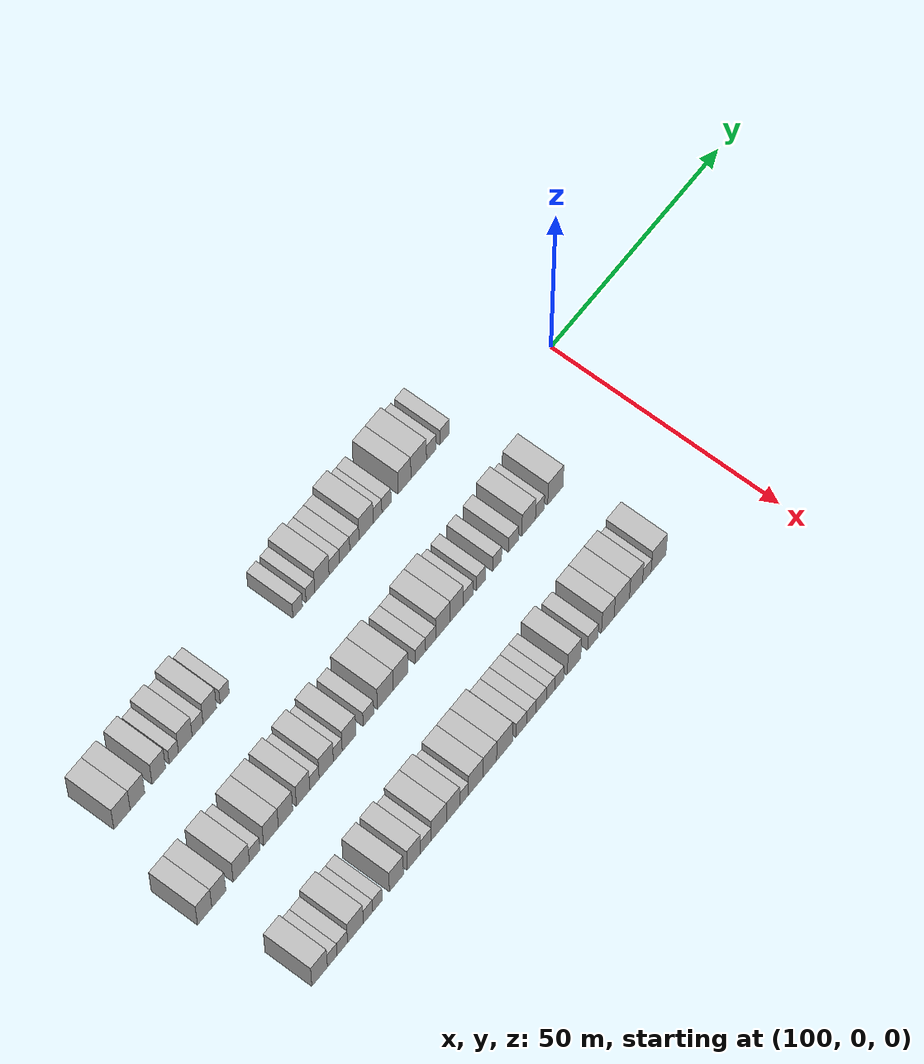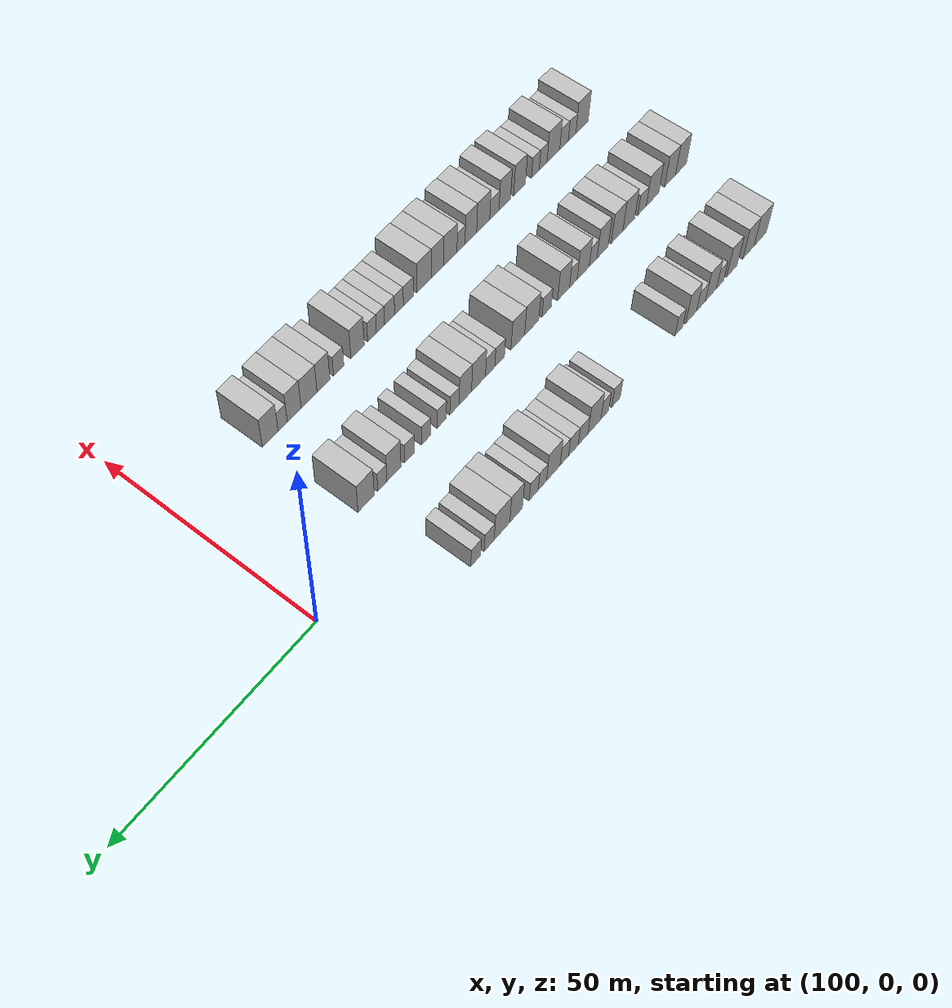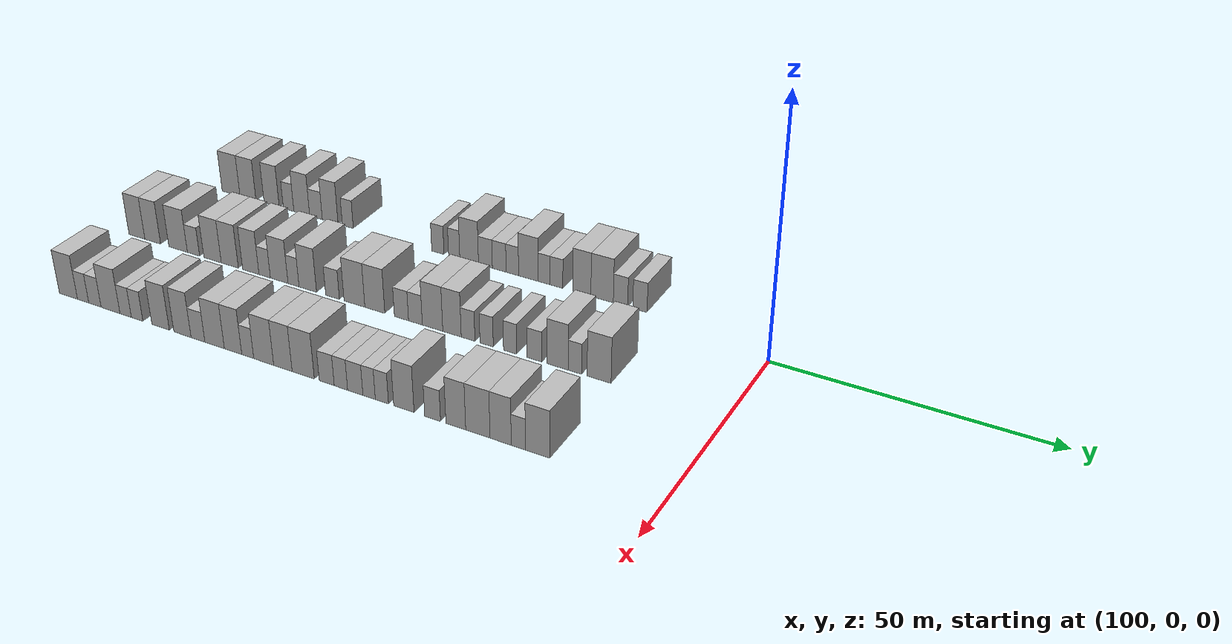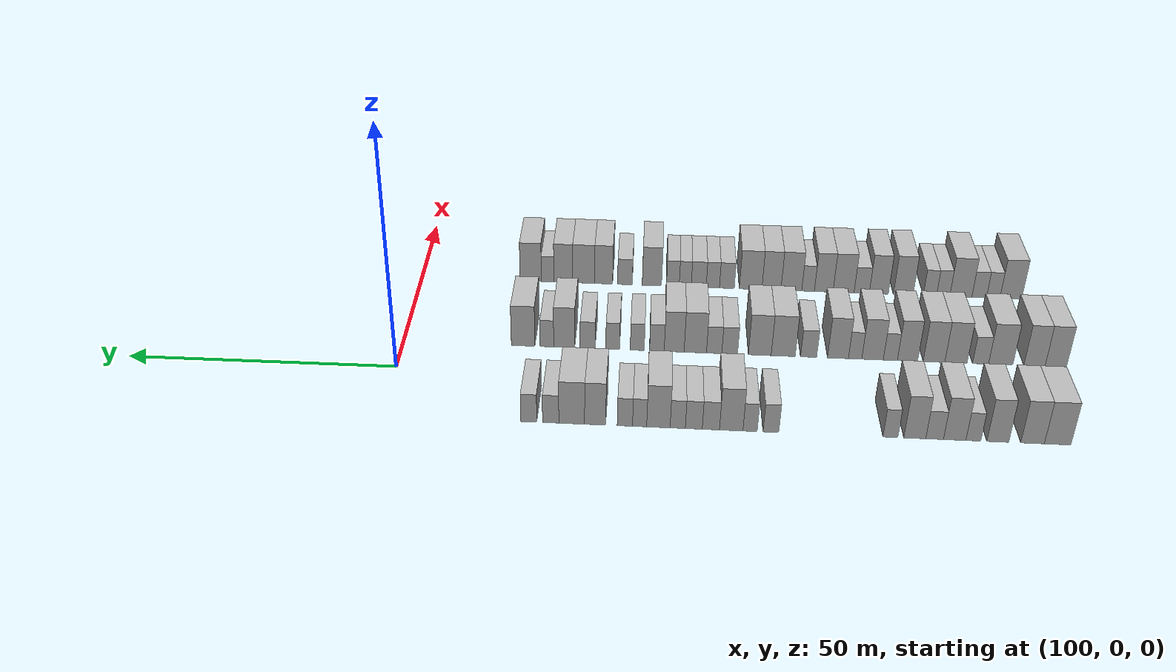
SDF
<sdf version="1.6">
 <world name="default">
  <model name="building_596">
   <static>1</static>
   <pose>91.0000 -115.7332 0 0.000000 0.000000 0.000000</pose>
   <link name="link">
    <pose>0 0 4.50 0 0 0</pose>
    <collision name="collision"><geometry><box><size>10.0000 4.4180 9.0000</size></box></geometry></collision>
    <visual name="visual">
     <cast_shadows>0</cast_shadows>
     <geometry><box><size>10.0000 4.4180 9.0000</size></box></geometry>
     <material>
      <script>
       <uri>model://HANNAS_wall/materials/scripts</uri>
       <uri>model://HANNAS_wall/materials/textures</uri>
       <name>vrc/HANNAS_wall</name>
      </script>
     </material>
    </visual>
   </link>
  </model>
  <model name="building_597">
   <static>1</static>
   <pose>91.0000 -111.5563 0 0.000000 0.000000 0.000000</pose>
   <link name="link">
    <pose>0 0 4.50 0 0 0</pose>
    <collision name="collision"><geometry><box><size>10.0000 3.9357 9.0000</size></box></geometry></collision>
    <visual name="visual">
     <cast_shadows>0</cast_shadows>
     <geometry><box><size>10.0000 3.9357 9.0000</size></box></geometry>
     <material>
      <script>
       <uri>model://HANNAS_wall/materials/scripts</uri>
       <uri>model://HANNAS_wall/materials/textures</uri>
       <name>vrc/HANNAS_wall</name>
      </script>
     </material>
    </visual>
   </link>
  </model>
  <model name="building_598">
   <static>1</static>
   <pose>91.0000 -105.7541 0 0.000000 0.000000 0.000000</pose>
   <link name="link">
    <pose>0 0 4.50 0 0 0</pose>
    <collision name="collision"><geometry><box><size>10.0000 3.6687 9.0000</size></box></geometry></collision>
    <visual name="visual">
     <cast_shadows>0</cast_shadows>
     <geometry><box><size>10.0000 3.6687 9.0000</size></box></geometry>
     <material>
      <script>
       <uri>model://HANNAS_wall/materials/scripts</uri>
       <uri>model://HANNAS_wall/materials/textures</uri>
       <name>vrc/HANNAS_wall</name>
      </script>
     </material>
    </visual>
   </link>
  </model>
  <model name="building_599">
   <static>1</static>
   <pose>91.0000 -101.6655 0 0.000000 0.000000 0.000000</pose>
   <link name="link">
    <pose>0 0 3.00 0 0 0</pose>
    <collision name="collision"><geometry><box><size>10.0000 2.5085 6.0000</size></box></geometry></collision>
    <visual name="visual">
     <cast_shadows>0</cast_shadows>
     <geometry><box><size>10.0000 2.5085 6.0000</size></box></geometry>
     <material>
      <script>
       <uri>model://HANNAS_wall/materials/scripts</uri>
       <uri>model://HANNAS_wall/materials/textures</uri>
       <name>vrc/HANNAS_wall</name>
      </script>
     </material>
    </visual>
   </link>
  </model>
  <model name="building_600">
   <static>1</static>
   <pose>91.0000 -98.5312 0 0.000000 0.000000 0.000000</pose>
   <link name="link">
    <pose>0 0 4.50 0 0 0</pose>
    <collision name="collision"><geometry><box><size>10.0000 3.7600 9.0000</size></box></geometry></collision>
    <visual name="visual">
     <cast_shadows>0</cast_shadows>
     <geometry><box><size>10.0000 3.7600 9.0000</size></box></geometry>
     <material>
      <script>
       <uri>model://HANNAS_wall/materials/scripts</uri>
       <uri>model://HANNAS_wall/materials/textures</uri>
       <name>vrc/HANNAS_wall</name>
      </script>
     </material>
    </visual>
   </link>
  </model>
  <model name="building_601">
   <static>1</static>
   <pose>91.0000 -95.1599 0 0.000000 0.000000 0.000000</pose>
   <link name="link">
    <pose>0 0 3.00 0 0 0</pose>
    <collision name="collision"><geometry><box><size>10.0000 2.9827 6.0000</size></box></geometry></collision>
    <visual name="visual">
     <cast_shadows>0</cast_shadows>
     <geometry><box><size>10.0000 2.9827 6.0000</size></box></geometry>
     <material>
      <script>
       <uri>model://HANNAS_wall/materials/scripts</uri>
       <uri>model://HANNAS_wall/materials/textures</uri>
       <name>vrc/HANNAS_wall</name>
      </script>
     </material>
    </visual>
   </link>
  </model>
  <model name="building_602">
   <static>1</static>
   <pose>91.0000 -91.8245 0 0.000000 0.000000 0.000000</pose>
   <link name="link">
    <pose>0 0 4.50 0 0 0</pose>
    <collision name="collision"><geometry><box><size>10.0000 3.6879 9.0000</size></box></geometry></collision>
    <visual name="visual">
     <cast_shadows>0</cast_shadows>
     <geometry><box><size>10.0000 3.6879 9.0000</size></box></geometry>
     <material>
      <script>
       <uri>model://HANNAS_wall/materials/scripts</uri>
       <uri>model://HANNAS_wall/materials/textures</uri>
       <name>vrc/HANNAS_wall</name>
      </script>
     </material>
    </visual>
   </link>
  </model>
  <model name="building_603">
   <static>1</static>
   <pose>91.0000 -87.7229 0 0.000000 0.000000 0.000000</pose>
   <link name="link">
    <pose>0 0 3.00 0 0 0</pose>
    <collision name="collision"><geometry><box><size>10.0000 2.5155 6.0000</size></box></geometry></collision>
    <visual name="visual">
     <cast_shadows>0</cast_shadows>
     <geometry><box><size>10.0000 2.5155 6.0000</size></box></geometry>
     <material>
      <script>
       <uri>model://HANNAS_wall/materials/scripts</uri>
       <uri>model://HANNAS_wall/materials/textures</uri>
       <name>vrc/HANNAS_wall</name>
      </script>
     </material>
    </visual>
   </link>
  </model>
  <model name="building_604">
   <static>1</static>
   <pose>91.0000 -67.4478 0 0.000000 0.000000 0.000000</pose>
   <link name="link">
    <pose>0 0 3.00 0 0 0</pose>
    <collision name="collision"><geometry><box><size>10.0000 2.6782 6.0000</size></box></geometry></collision>
    <visual name="visual">
     <cast_shadows>0</cast_shadows>
     <geometry><box><size>10.0000 2.6782 6.0000</size></box></geometry>
     <material>
      <script>
       <uri>model://HANNAS_wall/materials/scripts</uri>
       <uri>model://HANNAS_wall/materials/textures</uri>
       <name>vrc/HANNAS_wall</name>
      </script>
     </material>
    </visual>
   </link>
  </model>
  <model name="building_605">
   <static>1</static>
   <pose>91.0000 -63.8937 0 0.000000 0.000000 0.000000</pose>
   <link name="link">
    <pose>0 0 3.00 0 0 0</pose>
    <collision name="collision"><geometry><box><size>10.0000 2.4301 6.0000</size></box></geometry></collision>
    <visual name="visual">
     <cast_shadows>0</cast_shadows>
     <geometry><box><size>10.0000 2.4301 6.0000</size></box></geometry>
     <material>
      <script>
       <uri>model://HANNAS_wall/materials/scripts</uri>
       <uri>model://HANNAS_wall/materials/textures</uri>
       <name>vrc/HANNAS_wall</name>
      </script>
     </material>
    </visual>
   </link>
  </model>
  <model name="building_606">
   <static>1</static>
   <pose>91.0000 -60.6698 0 0.000000 0.000000 0.000000</pose>
   <link name="link">
    <pose>0 0 4.50 0 0 0</pose>
    <collision name="collision"><geometry><box><size>10.0000 4.0177 9.0000</size></box></geometry></collision>
    <visual name="visual">
     <cast_shadows>0</cast_shadows>
     <geometry><box><size>10.0000 4.0177 9.0000</size></box></geometry>
     <material>
      <script>
       <uri>model://HANNAS_wall/materials/scripts</uri>
       <uri>model://HANNAS_wall/materials/textures</uri>
       <name>vrc/HANNAS_wall</name>
      </script>
     </material>
    </visual>
   </link>
  </model>
  <model name="building_607">
   <static>1</static>
   <pose>91.0000 -57.1854 0 0.000000 0.000000 0.000000</pose>
   <link name="link">
    <pose>0 0 3.00 0 0 0</pose>
    <collision name="collision"><geometry><box><size>10.0000 2.9510 6.0000</size></box></geometry></collision>
    <visual name="visual">
     <cast_shadows>0</cast_shadows>
     <geometry><box><size>10.0000 2.9510 6.0000</size></box></geometry>
     <material>
      <script>
       <uri>model://HANNAS_wall/materials/scripts</uri>
       <uri>model://HANNAS_wall/materials/textures</uri>
       <name>vrc/HANNAS_wall</name>
      </script>
     </material>
    </visual>
   </link>
  </model>
  <model name="building_608">
   <static>1</static>
   <pose>91.0000 -54.2604 0 0.000000 0.000000 0.000000</pose>
   <link name="link">
    <pose>0 0 3.00 0 0 0</pose>
    <collision name="collision"><geometry><box><size>10.0000 2.8991 6.0000</size></box></geometry></collision>
    <visual name="visual">
     <cast_shadows>0</cast_shadows>
     <geometry><box><size>10.0000 2.8991 6.0000</size></box></geometry>
     <material>
      <script>
       <uri>model://HANNAS_wall/materials/scripts</uri>
       <uri>model://HANNAS_wall/materials/textures</uri>
       <name>vrc/HANNAS_wall</name>
      </script>
     </material>
    </visual>
   </link>
  </model>
  <model name="building_609">
   <static>1</static>
   <pose>91.0000 -51.5032 0 0.000000 0.000000 0.000000</pose>
   <link name="link">
    <pose>0 0 3.00 0 0 0</pose>
    <collision name="collision"><geometry><box><size>10.0000 2.6151 6.0000</size></box></geometry></collision>
    <visual name="visual">
     <cast_shadows>0</cast_shadows>
     <geometry><box><size>10.0000 2.6151 6.0000</size></box></geometry>
     <material>
      <script>
       <uri>model://HANNAS_wall/materials/scripts</uri>
       <uri>model://HANNAS_wall/materials/textures</uri>
       <name>vrc/HANNAS_wall</name>
      </script>
     </material>
    </visual>
   </link>
  </model>
  <model name="building_610">
   <static>1</static>
   <pose>91.0000 -48.1780 0 0.000000 0.000000 0.000000</pose>
   <link name="link">
    <pose>0 0 4.50 0 0 0</pose>
    <collision name="collision"><geometry><box><size>10.0000 4.0354 9.0000</size></box></geometry></collision>
    <visual name="visual">
     <cast_shadows>0</cast_shadows>
     <geometry><box><size>10.0000 4.0354 9.0000</size></box></geometry>
     <material>
      <script>
       <uri>model://HANNAS_wall/materials/scripts</uri>
       <uri>model://HANNAS_wall/materials/textures</uri>
       <name>vrc/HANNAS_wall</name>
      </script>
     </material>
    </visual>
   </link>
  </model>
  <model name="building_611">
   <static>1</static>
   <pose>91.0000 -44.9406 0 0.000000 0.000000 0.000000</pose>
   <link name="link">
    <pose>0 0 3.00 0 0 0</pose>
    <collision name="collision"><geometry><box><size>10.0000 2.4393 6.0000</size></box></geometry></collision>
    <visual name="visual">
     <cast_shadows>0</cast_shadows>
     <geometry><box><size>10.0000 2.4393 6.0000</size></box></geometry>
     <material>
      <script>
       <uri>model://HANNAS_wall/materials/scripts</uri>
       <uri>model://HANNAS_wall/materials/textures</uri>
       <name>vrc/HANNAS_wall</name>
      </script>
     </material>
    </visual>
   </link>
  </model>
  <model name="building_612">
   <static>1</static>
   <pose>91.0000 -42.4028 0 0.000000 0.000000 0.000000</pose>
   <link name="link">
    <pose>0 0 3.00 0 0 0</pose>
    <collision name="collision"><geometry><box><size>10.0000 2.6364 6.0000</size></box></geometry></collision>
    <visual name="visual">
     <cast_shadows>0</cast_shadows>
     <geometry><box><size>10.0000 2.6364 6.0000</size></box></geometry>
     <material>
      <script>
       <uri>model://HANNAS_wall/materials/scripts</uri>
       <uri>model://HANNAS_wall/materials/textures</uri>
       <name>vrc/HANNAS_wall</name>
      </script>
     </material>
    </visual>
   </link>
  </model>
  <model name="building_613">
   <static>1</static>
   <pose>91.0000 -37.2585 0 0.000000 0.000000 0.000000</pose>
   <link name="link">
    <pose>0 0 4.50 0 0 0</pose>
    <collision name="collision"><geometry><box><size>10.0000 3.6522 9.0000</size></box></geometry></collision>
    <visual name="visual">
     <cast_shadows>0</cast_shadows>
     <geometry><box><size>10.0000 3.6522 9.0000</size></box></geometry>
     <material>
      <script>
       <uri>model://HANNAS_wall/materials/scripts</uri>
       <uri>model://HANNAS_wall/materials/textures</uri>
       <name>vrc/HANNAS_wall</name>
      </script>
     </material>
    </visual>
   </link>
  </model>
  <model name="building_614">
   <static>1</static>
   <pose>91.0000 -33.2013 0 0.000000 0.000000 0.000000</pose>
   <link name="link">
    <pose>0 0 4.50 0 0 0</pose>
    <collision name="collision"><geometry><box><size>10.0000 4.4621 9.0000</size></box></geometry></collision>
    <visual name="visual">
     <cast_shadows>0</cast_shadows>
     <geometry><box><size>10.0000 4.4621 9.0000</size></box></geometry>
     <material>
      <script>
       <uri>model://HANNAS_wall/materials/scripts</uri>
       <uri>model://HANNAS_wall/materials/textures</uri>
       <name>vrc/HANNAS_wall</name>
      </script>
     </material>
    </visual>
   </link>
  </model>
  <model name="building_615">
   <static>1</static>
   <pose>91.0000 -29.5613 0 0.000000 0.000000 0.000000</pose>
   <link name="link">
    <pose>0 0 3.00 0 0 0</pose>
    <collision name="collision"><geometry><box><size>10.0000 2.8179 6.0000</size></box></geometry></collision>
    <visual name="visual">
     <cast_shadows>0</cast_shadows>
     <geometry><box><size>10.0000 2.8179 6.0000</size></box></geometry>
     <material>
      <script>
       <uri>model://HANNAS_wall/materials/scripts</uri>
       <uri>model://HANNAS_wall/materials/textures</uri>
       <name>vrc/HANNAS_wall</name>
      </script>
     </material>
    </visual>
   </link>
  </model>
  <model name="building_616">
   <static>1</static>
   <pose>91.0000 -25.7665 0 0.000000 0.000000 0.000000</pose>
   <link name="link">
    <pose>0 0 3.00 0 0 0</pose>
    <collision name="collision"><geometry><box><size>10.0000 2.7718 6.0000</size></box></geometry></collision>
    <visual name="visual">
     <cast_shadows>0</cast_shadows>
     <geometry><box><size>10.0000 2.7718 6.0000</size></box></geometry>
     <material>
      <script>
       <uri>model://HANNAS_wall/materials/scripts</uri>
       <uri>model://HANNAS_wall/materials/textures</uri>
       <name>vrc/HANNAS_wall</name>
      </script>
     </material>
    </visual>
   </link>
  </model>
  <model name="building_790">
   <static>1</static>
   <pose>113.0000 -120.7883 0 0.000000 0.000000 0.000000</pose>
   <link name="link">
    <pose>0 0 4.50 0 0 0</pose>
    <collision name="collision"><geometry><box><size>10.0000 3.8691 9.0000</size></box></geometry></collision>
    <visual name="visual">
     <cast_shadows>0</cast_shadows>
     <geometry><box><size>10.0000 3.8691 9.0000</size></box></geometry>
     <material>
      <script>
       <uri>model://HANNAS_wall/materials/scripts</uri>
       <uri>model://HANNAS_wall/materials/textures</uri>
       <name>vrc/HANNAS_wall</name>
      </script>
     </material>
    </visual>
   </link>
  </model>
  <model name="building_791">
   <static>1</static>
   <pose>113.0000 -116.9478 0 0.000000 0.000000 0.000000</pose>
   <link name="link">
    <pose>0 0 4.50 0 0 0</pose>
    <collision name="collision"><geometry><box><size>10.0000 3.8120 9.0000</size></box></geometry></collision>
    <visual name="visual">
     <cast_shadows>0</cast_shadows>
     <geometry><box><size>10.0000 3.8120 9.0000</size></box></geometry>
     <material>
      <script>
       <uri>model://HANNAS_wall/materials/scripts</uri>
       <uri>model://HANNAS_wall/materials/textures</uri>
       <name>vrc/HANNAS_wall</name>
      </script>
     </material>
    </visual>
   </link>
  </model>
  <model name="building_792">
   <static>1</static>
   <pose>113.0000 -110.8423 0 0.000000 0.000000 0.000000</pose>
   <link name="link">
    <pose>0 0 4.50 0 0 0</pose>
    <collision name="collision"><geometry><box><size>10.0000 4.3990 9.0000</size></box></geometry></collision>
    <visual name="visual">
     <cast_shadows>0</cast_shadows>
     <geometry><box><size>10.0000 4.3990 9.0000</size></box></geometry>
     <material>
      <script>
       <uri>model://HANNAS_wall/materials/scripts</uri>
       <uri>model://HANNAS_wall/materials/textures</uri>
       <name>vrc/HANNAS_wall</name>
      </script>
     </material>
    </visual>
   </link>
  </model>
  <model name="building_793">
   <static>1</static>
   <pose>113.0000 -107.1975 0 0.000000 0.000000 0.000000</pose>
   <link name="link">
    <pose>0 0 3.00 0 0 0</pose>
    <collision name="collision"><geometry><box><size>10.0000 2.8906 6.0000</size></box></geometry></collision>
    <visual name="visual">
     <cast_shadows>0</cast_shadows>
     <geometry><box><size>10.0000 2.8906 6.0000</size></box></geometry>
     <material>
      <script>
       <uri>model://HANNAS_wall/materials/scripts</uri>
       <uri>model://HANNAS_wall/materials/textures</uri>
       <name>vrc/HANNAS_wall</name>
      </script>
     </material>
    </visual>
   </link>
  </model>
  <model name="building_794">
   <static>1</static>
   <pose>113.0000 -102.7271 0 0.000000 0.000000 0.000000</pose>
   <link name="link">
    <pose>0 0 4.50 0 0 0</pose>
    <collision name="collision"><geometry><box><size>10.0000 4.0502 9.0000</size></box></geometry></collision>
    <visual name="visual">
     <cast_shadows>0</cast_shadows>
     <geometry><box><size>10.0000 4.0502 9.0000</size></box></geometry>
     <material>
      <script>
       <uri>model://HANNAS_wall/materials/scripts</uri>
       <uri>model://HANNAS_wall/materials/textures</uri>
       <name>vrc/HANNAS_wall</name>
      </script>
     </material>
    </visual>
   </link>
  </model>
  <model name="building_795">
   <static>1</static>
   <pose>113.0000 -98.7342 0 0.000000 0.000000 0.000000</pose>
   <link name="link">
    <pose>0 0 4.50 0 0 0</pose>
    <collision name="collision"><geometry><box><size>10.0000 3.9356 9.0000</size></box></geometry></collision>
    <visual name="visual">
     <cast_shadows>0</cast_shadows>
     <geometry><box><size>10.0000 3.9356 9.0000</size></box></geometry>
     <material>
      <script>
       <uri>model://HANNAS_wall/materials/scripts</uri>
       <uri>model://HANNAS_wall/materials/textures</uri>
       <name>vrc/HANNAS_wall</name>
      </script>
     </material>
    </visual>
   </link>
  </model>
  <model name="building_796">
   <static>1</static>
   <pose>113.0000 -93.9136 0 0.000000 0.000000 0.000000</pose>
   <link name="link">
    <pose>0 0 4.50 0 0 0</pose>
    <collision name="collision"><geometry><box><size>10.0000 3.7055 9.0000</size></box></geometry></collision>
    <visual name="visual">
     <cast_shadows>0</cast_shadows>
     <geometry><box><size>10.0000 3.7055 9.0000</size></box></geometry>
     <material>
      <script>
       <uri>model://HANNAS_wall/materials/scripts</uri>
       <uri>model://HANNAS_wall/materials/textures</uri>
       <name>vrc/HANNAS_wall</name>
      </script>
     </material>
    </visual>
   </link>
  </model>
  <model name="building_797">
   <static>1</static>
   <pose>113.0000 -90.7800 0 0.000000 0.000000 0.000000</pose>
   <link name="link">
    <pose>0 0 3.00 0 0 0</pose>
    <collision name="collision"><geometry><box><size>10.0000 2.5617 6.0000</size></box></geometry></collision>
    <visual name="visual">
     <cast_shadows>0</cast_shadows>
     <geometry><box><size>10.0000 2.5617 6.0000</size></box></geometry>
     <material>
      <script>
       <uri>model://HANNAS_wall/materials/scripts</uri>
       <uri>model://HANNAS_wall/materials/textures</uri>
       <name>vrc/HANNAS_wall</name>
      </script>
     </material>
    </visual>
   </link>
  </model>
  <model name="building_798">
   <static>1</static>
   <pose>113.0000 -87.5280 0 0.000000 0.000000 0.000000</pose>
   <link name="link">
    <pose>0 0 4.50 0 0 0</pose>
    <collision name="collision"><geometry><box><size>10.0000 3.9424 9.0000</size></box></geometry></collision>
    <visual name="visual">
     <cast_shadows>0</cast_shadows>
     <geometry><box><size>10.0000 3.9424 9.0000</size></box></geometry>
     <material>
      <script>
       <uri>model://HANNAS_wall/materials/scripts</uri>
       <uri>model://HANNAS_wall/materials/textures</uri>
       <name>vrc/HANNAS_wall</name>
      </script>
     </material>
    </visual>
   </link>
  </model>
  <model name="building_799">
   <static>1</static>
   <pose>113.0000 -84.3346 0 0.000000 0.000000 0.000000</pose>
   <link name="link">
    <pose>0 0 3.00 0 0 0</pose>
    <collision name="collision"><geometry><box><size>10.0000 2.4444 6.0000</size></box></geometry></collision>
    <visual name="visual">
     <cast_shadows>0</cast_shadows>
     <geometry><box><size>10.0000 2.4444 6.0000</size></box></geometry>
     <material>
      <script>
       <uri>model://HANNAS_wall/materials/scripts</uri>
       <uri>model://HANNAS_wall/materials/textures</uri>
       <name>vrc/HANNAS_wall</name>
      </script>
     </material>
    </visual>
   </link>
  </model>
  <model name="building_800">
   <static>1</static>
   <pose>113.0000 -81.1959 0 0.000000 0.000000 0.000000</pose>
   <link name="link">
    <pose>0 0 4.50 0 0 0</pose>
    <collision name="collision"><geometry><box><size>10.0000 3.8331 9.0000</size></box></geometry></collision>
    <visual name="visual">
     <cast_shadows>0</cast_shadows>
     <geometry><box><size>10.0000 3.8331 9.0000</size></box></geometry>
     <material>
      <script>
       <uri>model://HANNAS_wall/materials/scripts</uri>
       <uri>model://HANNAS_wall/materials/textures</uri>
       <name>vrc/HANNAS_wall</name>
      </script>
     </material>
    </visual>
   </link>
  </model>
  <model name="building_801">
   <static>1</static>
   <pose>113.0000 -75.8028 0 0.000000 0.000000 0.000000</pose>
   <link name="link">
    <pose>0 0 3.00 0 0 0</pose>
    <collision name="collision"><geometry><box><size>10.0000 2.9530 6.0000</size></box></geometry></collision>
    <visual name="visual">
     <cast_shadows>0</cast_shadows>
     <geometry><box><size>10.0000 2.9530 6.0000</size></box></geometry>
     <material>
      <script>
       <uri>model://HANNAS_wall/materials/scripts</uri>
       <uri>model://HANNAS_wall/materials/textures</uri>
       <name>vrc/HANNAS_wall</name>
      </script>
     </material>
    </visual>
   </link>
  </model>
  <model name="building_802">
   <static>1</static>
   <pose>113.0000 -71.1114 0 0.000000 0.000000 0.000000</pose>
   <link name="link">
    <pose>0 0 4.50 0 0 0</pose>
    <collision name="collision"><geometry><box><size>10.0000 4.4298 9.0000</size></box></geometry></collision>
    <visual name="visual">
     <cast_shadows>0</cast_shadows>
     <geometry><box><size>10.0000 4.4298 9.0000</size></box></geometry>
     <material>
      <script>
       <uri>model://HANNAS_wall/materials/scripts</uri>
       <uri>model://HANNAS_wall/materials/textures</uri>
       <name>vrc/HANNAS_wall</name>
      </script>
     </material>
    </visual>
   </link>
  </model>
  <model name="building_803">
   <static>1</static>
   <pose>113.0000 -66.7946 0 0.000000 0.000000 0.000000</pose>
   <link name="link">
    <pose>0 0 4.50 0 0 0</pose>
    <collision name="collision"><geometry><box><size>10.0000 4.2039 9.0000</size></box></geometry></collision>
    <visual name="visual">
     <cast_shadows>0</cast_shadows>
     <geometry><box><size>10.0000 4.2039 9.0000</size></box></geometry>
     <material>
      <script>
       <uri>model://HANNAS_wall/materials/scripts</uri>
       <uri>model://HANNAS_wall/materials/textures</uri>
       <name>vrc/HANNAS_wall</name>
      </script>
     </material>
    </visual>
   </link>
  </model>
  <model name="building_804">
   <static>1</static>
   <pose>113.0000 -61.2304 0 0.000000 0.000000 0.000000</pose>
   <link name="link">
    <pose>0 0 3.00 0 0 0</pose>
    <collision name="collision"><geometry><box><size>10.0000 2.9246 6.0000</size></box></geometry></collision>
    <visual name="visual">
     <cast_shadows>0</cast_shadows>
     <geometry><box><size>10.0000 2.9246 6.0000</size></box></geometry>
     <material>
      <script>
       <uri>model://HANNAS_wall/materials/scripts</uri>
       <uri>model://HANNAS_wall/materials/textures</uri>
       <name>vrc/HANNAS_wall</name>
      </script>
     </material>
    </visual>
   </link>
  </model>
  <model name="building_805">
   <static>1</static>
   <pose>113.0000 -58.3495 0 0.000000 0.000000 0.000000</pose>
   <link name="link">
    <pose>0 0 3.00 0 0 0</pose>
    <collision name="collision"><geometry><box><size>10.0000 2.8372 6.0000</size></box></geometry></collision>
    <visual name="visual">
     <cast_shadows>0</cast_shadows>
     <geometry><box><size>10.0000 2.8372 6.0000</size></box></geometry>
     <material>
      <script>
       <uri>model://HANNAS_wall/materials/scripts</uri>
       <uri>model://HANNAS_wall/materials/textures</uri>
       <name>vrc/HANNAS_wall</name>
      </script>
     </material>
    </visual>
   </link>
  </model>
  <model name="building_806">
   <static>1</static>
   <pose>113.0000 -54.8544 0 0.000000 0.000000 0.000000</pose>
   <link name="link">
    <pose>0 0 4.50 0 0 0</pose>
    <collision name="collision"><geometry><box><size>10.0000 4.1530 9.0000</size></box></geometry></collision>
    <visual name="visual">
     <cast_shadows>0</cast_shadows>
     <geometry><box><size>10.0000 4.1530 9.0000</size></box></geometry>
     <material>
      <script>
       <uri>model://HANNAS_wall/materials/scripts</uri>
       <uri>model://HANNAS_wall/materials/textures</uri>
       <name>vrc/HANNAS_wall</name>
      </script>
     </material>
    </visual>
   </link>
  </model>
  <model name="building_807">
   <static>1</static>
   <pose>113.0000 -50.9264 0 0.000000 0.000000 0.000000</pose>
   <link name="link">
    <pose>0 0 4.50 0 0 0</pose>
    <collision name="collision"><geometry><box><size>10.0000 3.7032 9.0000</size></box></geometry></collision>
    <visual name="visual">
     <cast_shadows>0</cast_shadows>
     <geometry><box><size>10.0000 3.7032 9.0000</size></box></geometry>
     <material>
      <script>
       <uri>model://HANNAS_wall/materials/scripts</uri>
       <uri>model://HANNAS_wall/materials/textures</uri>
       <name>vrc/HANNAS_wall</name>
      </script>
     </material>
    </visual>
   </link>
  </model>
  <model name="building_808">
   <static>1</static>
   <pose>113.0000 -47.7126 0 0.000000 0.000000 0.000000</pose>
   <link name="link">
    <pose>0 0 3.00 0 0 0</pose>
    <collision name="collision"><geometry><box><size>10.0000 2.7243 6.0000</size></box></geometry></collision>
    <visual name="visual">
     <cast_shadows>0</cast_shadows>
     <geometry><box><size>10.0000 2.7243 6.0000</size></box></geometry>
     <material>
      <script>
       <uri>model://HANNAS_wall/materials/scripts</uri>
       <uri>model://HANNAS_wall/materials/textures</uri>
       <name>vrc/HANNAS_wall</name>
      </script>
     </material>
    </visual>
   </link>
  </model>
  <model name="building_809">
   <static>1</static>
   <pose>113.0000 -44.0417 0 0.000000 0.000000 0.000000</pose>
   <link name="link">
    <pose>0 0 3.00 0 0 0</pose>
    <collision name="collision"><geometry><box><size>10.0000 2.6174 6.0000</size></box></geometry></collision>
    <visual name="visual">
     <cast_shadows>0</cast_shadows>
     <geometry><box><size>10.0000 2.6174 6.0000</size></box></geometry>
     <material>
      <script>
       <uri>model://HANNAS_wall/materials/scripts</uri>
       <uri>model://HANNAS_wall/materials/textures</uri>
       <name>vrc/HANNAS_wall</name>
      </script>
     </material>
    </visual>
   </link>
  </model>
  <model name="building_810">
   <static>1</static>
   <pose>113.0000 -39.4471 0 0.000000 0.000000 0.000000</pose>
   <link name="link">
    <pose>0 0 3.00 0 0 0</pose>
    <collision name="collision"><geometry><box><size>10.0000 2.5719 6.0000</size></box></geometry></collision>
    <visual name="visual">
     <cast_shadows>0</cast_shadows>
     <geometry><box><size>10.0000 2.5719 6.0000</size></box></geometry>
     <material>
      <script>
       <uri>model://HANNAS_wall/materials/scripts</uri>
       <uri>model://HANNAS_wall/materials/textures</uri>
       <name>vrc/HANNAS_wall</name>
      </script>
     </material>
    </visual>
   </link>
  </model>
  <model name="building_811">
   <static>1</static>
   <pose>113.0000 -34.7523 0 0.000000 0.000000 0.000000</pose>
   <link name="link">
    <pose>0 0 3.00 0 0 0</pose>
    <collision name="collision"><geometry><box><size>10.0000 2.8177 6.0000</size></box></geometry></collision>
    <visual name="visual">
     <cast_shadows>0</cast_shadows>
     <geometry><box><size>10.0000 2.8177 6.0000</size></box></geometry>
     <material>
      <script>
       <uri>model://HANNAS_wall/materials/scripts</uri>
       <uri>model://HANNAS_wall/materials/textures</uri>
       <name>vrc/HANNAS_wall</name>
      </script>
     </material>
    </visual>
   </link>
  </model>
  <model name="building_812">
   <static>1</static>
   <pose>113.0000 -30.3694 0 0.000000 0.000000 0.000000</pose>
   <link name="link">
    <pose>0 0 4.50 0 0 0</pose>
    <collision name="collision"><geometry><box><size>10.0000 3.9481 9.0000</size></box></geometry></collision>
    <visual name="visual">
     <cast_shadows>0</cast_shadows>
     <geometry><box><size>10.0000 3.9481 9.0000</size></box></geometry>
     <material>
      <script>
       <uri>model://HANNAS_wall/materials/scripts</uri>
       <uri>model://HANNAS_wall/materials/textures</uri>
       <name>vrc/HANNAS_wall</name>
      </script>
     </material>
    </visual>
   </link>
  </model>
  <model name="building_813">
   <static>1</static>
   <pose>113.0000 -27.1267 0 0.000000 0.000000 0.000000</pose>
   <link name="link">
    <pose>0 0 3.00 0 0 0</pose>
    <collision name="collision"><geometry><box><size>10.0000 2.5373 6.0000</size></box></geometry></collision>
    <visual name="visual">
     <cast_shadows>0</cast_shadows>
     <geometry><box><size>10.0000 2.5373 6.0000</size></box></geometry>
     <material>
      <script>
       <uri>model://HANNAS_wall/materials/scripts</uri>
       <uri>model://HANNAS_wall/materials/textures</uri>
       <name>vrc/HANNAS_wall</name>
      </script>
     </material>
    </visual>
   </link>
  </model>
  <model name="building_814">
   <static>1</static>
   <pose>113.0000 -22.6485 0 0.000000 0.000000 0.000000</pose>
   <link name="link">
    <pose>0 0 4.50 0 0 0</pose>
    <collision name="collision"><geometry><box><size>10.0000 4.4190 9.0000</size></box></geometry></collision>
    <visual name="visual">
     <cast_shadows>0</cast_shadows>
     <geometry><box><size>10.0000 4.4190 9.0000</size></box></geometry>
     <material>
      <script>
       <uri>model://HANNAS_wall/materials/scripts</uri>
       <uri>model://HANNAS_wall/materials/textures</uri>
       <name>vrc/HANNAS_wall</name>
      </script>
     </material>
    </visual>
   </link>
  </model>
  <model name="building_978">
   <static>1</static>
   <pose>135.0000 -117.4335 0 0.000000 0.000000 0.000000</pose>
   <link name="link">
    <pose>0 0 4.50 0 0 0</pose>
    <collision name="collision"><geometry><box><size>10.0000 4.2434 9.0000</size></box></geometry></collision>
    <visual name="visual">
     <cast_shadows>0</cast_shadows>
     <geometry><box><size>10.0000 4.2434 9.0000</size></box></geometry>
     <material>
      <script>
       <uri>model://HANNAS_wall/materials/scripts</uri>
       <uri>model://HANNAS_wall/materials/textures</uri>
       <name>vrc/HANNAS_wall</name>
      </script>
     </material>
    </visual>
   </link>
  </model>
  <model name="building_979">
   <static>1</static>
   <pose>135.0000 -113.9976 0 0.000000 0.000000 0.000000</pose>
   <link name="link">
    <pose>0 0 3.00 0 0 0</pose>
    <collision name="collision"><geometry><box><size>10.0000 2.6283 6.0000</size></box></geometry></collision>
    <visual name="visual">
     <cast_shadows>0</cast_shadows>
     <geometry><box><size>10.0000 2.6283 6.0000</size></box></geometry>
     <material>
      <script>
       <uri>model://HANNAS_wall/materials/scripts</uri>
       <uri>model://HANNAS_wall/materials/textures</uri>
       <name>vrc/HANNAS_wall</name>
      </script>
     </material>
    </visual>
   </link>
  </model>
  <model name="building_980">
   <static>1</static>
   <pose>135.0000 -111.2539 0 0.000000 0.000000 0.000000</pose>
   <link name="link">
    <pose>0 0 3.00 0 0 0</pose>
    <collision name="collision"><geometry><box><size>10.0000 2.8591 6.0000</size></box></geometry></collision>
    <visual name="visual">
     <cast_shadows>0</cast_shadows>
     <geometry><box><size>10.0000 2.8591 6.0000</size></box></geometry>
     <material>
      <script>
       <uri>model://HANNAS_wall/materials/scripts</uri>
       <uri>model://HANNAS_wall/materials/textures</uri>
       <name>vrc/HANNAS_wall</name>
      </script>
     </material>
    </visual>
   </link>
  </model>
  <model name="building_981">
   <static>1</static>
   <pose>135.0000 -107.6672 0 0.000000 0.000000 0.000000</pose>
   <link name="link">
    <pose>0 0 4.50 0 0 0</pose>
    <collision name="collision"><geometry><box><size>10.0000 4.3142 9.0000</size></box></geometry></collision>
    <visual name="visual">
     <cast_shadows>0</cast_shadows>
     <geometry><box><size>10.0000 4.3142 9.0000</size></box></geometry>
     <material>
      <script>
       <uri>model://HANNAS_wall/materials/scripts</uri>
       <uri>model://HANNAS_wall/materials/textures</uri>
       <name>vrc/HANNAS_wall</name>
      </script>
     </material>
    </visual>
   </link>
  </model>
  <model name="building_982">
   <static>1</static>
   <pose>135.0000 -104.2160 0 0.000000 0.000000 0.000000</pose>
   <link name="link">
    <pose>0 0 3.00 0 0 0</pose>
    <collision name="collision"><geometry><box><size>10.0000 2.5882 6.0000</size></box></geometry></collision>
    <visual name="visual">
     <cast_shadows>0</cast_shadows>
     <geometry><box><size>10.0000 2.5882 6.0000</size></box></geometry>
     <material>
      <script>
       <uri>model://HANNAS_wall/materials/scripts</uri>
       <uri>model://HANNAS_wall/materials/textures</uri>
       <name>vrc/HANNAS_wall</name>
      </script>
     </material>
    </visual>
   </link>
  </model>
  <model name="building_983">
   <static>1</static>
   <pose>135.0000 -101.6275 0 0.000000 0.000000 0.000000</pose>
   <link name="link">
    <pose>0 0 3.00 0 0 0</pose>
    <collision name="collision"><geometry><box><size>10.0000 2.5888 6.0000</size></box></geometry></collision>
    <visual name="visual">
     <cast_shadows>0</cast_shadows>
     <geometry><box><size>10.0000 2.5888 6.0000</size></box></geometry>
     <material>
      <script>
       <uri>model://HANNAS_wall/materials/scripts</uri>
       <uri>model://HANNAS_wall/materials/textures</uri>
       <name>vrc/HANNAS_wall</name>
      </script>
     </material>
    </visual>
   </link>
  </model>
  <model name="building_984">
   <static>1</static>
   <pose>135.0000 -96.3977 0 0.000000 0.000000 0.000000</pose>
   <link name="link">
    <pose>0 0 4.50 0 0 0</pose>
    <collision name="collision"><geometry><box><size>10.0000 3.8706 9.0000</size></box></geometry></collision>
    <visual name="visual">
     <cast_shadows>0</cast_shadows>
     <geometry><box><size>10.0000 3.8706 9.0000</size></box></geometry>
     <material>
      <script>
       <uri>model://HANNAS_wall/materials/scripts</uri>
       <uri>model://HANNAS_wall/materials/textures</uri>
       <name>vrc/HANNAS_wall</name>
      </script>
     </material>
    </visual>
   </link>
  </model>
  <model name="building_985">
   <static>1</static>
   <pose>135.0000 -91.5870 0 0.000000 0.000000 0.000000</pose>
   <link name="link">
    <pose>0 0 4.50 0 0 0</pose>
    <collision name="collision"><geometry><box><size>10.0000 3.7508 9.0000</size></box></geometry></collision>
    <visual name="visual">
     <cast_shadows>0</cast_shadows>
     <geometry><box><size>10.0000 3.7508 9.0000</size></box></geometry>
     <material>
      <script>
       <uri>model://HANNAS_wall/materials/scripts</uri>
       <uri>model://HANNAS_wall/materials/textures</uri>
       <name>vrc/HANNAS_wall</name>
      </script>
     </material>
    </visual>
   </link>
  </model>
  <model name="building_986">
   <static>1</static>
   <pose>135.0000 -88.2132 0 0.000000 0.000000 0.000000</pose>
   <link name="link">
    <pose>0 0 3.00 0 0 0</pose>
    <collision name="collision"><geometry><box><size>10.0000 2.9969 6.0000</size></box></geometry></collision>
    <visual name="visual">
     <cast_shadows>0</cast_shadows>
     <geometry><box><size>10.0000 2.9969 6.0000</size></box></geometry>
     <material>
      <script>
       <uri>model://HANNAS_wall/materials/scripts</uri>
       <uri>model://HANNAS_wall/materials/textures</uri>
       <name>vrc/HANNAS_wall</name>
      </script>
     </material>
    </visual>
   </link>
  </model>
  <model name="building_987">
   <static>1</static>
   <pose>135.0000 -84.6339 0 0.000000 0.000000 0.000000</pose>
   <link name="link">
    <pose>0 0 4.50 0 0 0</pose>
    <collision name="collision"><geometry><box><size>10.0000 4.1618 9.0000</size></box></geometry></collision>
    <visual name="visual">
     <cast_shadows>0</cast_shadows>
     <geometry><box><size>10.0000 4.1618 9.0000</size></box></geometry>
     <material>
      <script>
       <uri>model://HANNAS_wall/materials/scripts</uri>
       <uri>model://HANNAS_wall/materials/textures</uri>
       <name>vrc/HANNAS_wall</name>
      </script>
     </material>
    </visual>
   </link>
  </model>
  <model name="building_988">
   <static>1</static>
   <pose>135.0000 -80.7126 0 0.000000 0.000000 0.000000</pose>
   <link name="link">
    <pose>0 0 4.50 0 0 0</pose>
    <collision name="collision"><geometry><box><size>10.0000 3.6807 9.0000</size></box></geometry></collision>
    <visual name="visual">
     <cast_shadows>0</cast_shadows>
     <geometry><box><size>10.0000 3.6807 9.0000</size></box></geometry>
     <material>
      <script>
       <uri>model://HANNAS_wall/materials/scripts</uri>
       <uri>model://HANNAS_wall/materials/textures</uri>
       <name>vrc/HANNAS_wall</name>
      </script>
     </material>
    </visual>
   </link>
  </model>
  <model name="building_989">
   <static>1</static>
   <pose>135.0000 -77.6204 0 0.000000 0.000000 0.000000</pose>
   <link name="link">
    <pose>0 0 3.00 0 0 0</pose>
    <collision name="collision"><geometry><box><size>10.0000 2.5038 6.0000</size></box></geometry></collision>
    <visual name="visual">
     <cast_shadows>0</cast_shadows>
     <geometry><box><size>10.0000 2.5038 6.0000</size></box></geometry>
     <material>
      <script>
       <uri>model://HANNAS_wall/materials/scripts</uri>
       <uri>model://HANNAS_wall/materials/textures</uri>
       <name>vrc/HANNAS_wall</name>
      </script>
     </material>
    </visual>
   </link>
  </model>
  <model name="building_990">
   <static>1</static>
   <pose>135.0000 -74.3032 0 0.000000 0.000000 0.000000</pose>
   <link name="link">
    <pose>0 0 4.50 0 0 0</pose>
    <collision name="collision"><geometry><box><size>10.0000 4.1306 9.0000</size></box></geometry></collision>
    <visual name="visual">
     <cast_shadows>0</cast_shadows>
     <geometry><box><size>10.0000 4.1306 9.0000</size></box></geometry>
     <material>
      <script>
       <uri>model://HANNAS_wall/materials/scripts</uri>
       <uri>model://HANNAS_wall/materials/textures</uri>
       <name>vrc/HANNAS_wall</name>
      </script>
     </material>
    </visual>
   </link>
  </model>
  <model name="building_991">
   <static>1</static>
   <pose>135.0000 -70.3472 0 0.000000 0.000000 0.000000</pose>
   <link name="link">
    <pose>0 0 4.50 0 0 0</pose>
    <collision name="collision"><geometry><box><size>10.0000 3.7814 9.0000</size></box></geometry></collision>
    <visual name="visual">
     <cast_shadows>0</cast_shadows>
     <geometry><box><size>10.0000 3.7814 9.0000</size></box></geometry>
     <material>
      <script>
       <uri>model://HANNAS_wall/materials/scripts</uri>
       <uri>model://HANNAS_wall/materials/textures</uri>
       <name>vrc/HANNAS_wall</name>
      </script>
     </material>
    </visual>
   </link>
  </model>
  <model name="building_992">
   <static>1</static>
   <pose>135.0000 -66.2142 0 0.000000 0.000000 0.000000</pose>
   <link name="link">
    <pose>0 0 4.50 0 0 0</pose>
    <collision name="collision"><geometry><box><size>10.0000 4.4847 9.0000</size></box></geometry></collision>
    <visual name="visual">
     <cast_shadows>0</cast_shadows>
     <geometry><box><size>10.0000 4.4847 9.0000</size></box></geometry>
     <material>
      <script>
       <uri>model://HANNAS_wall/materials/scripts</uri>
       <uri>model://HANNAS_wall/materials/textures</uri>
       <name>vrc/HANNAS_wall</name>
      </script>
     </material>
    </visual>
   </link>
  </model>
  <model name="building_993">
   <static>1</static>
   <pose>135.0000 -61.4882 0 0.000000 0.000000 0.000000</pose>
   <link name="link">
    <pose>0 0 3.00 0 0 0</pose>
    <collision name="collision"><geometry><box><size>10.0000 2.9673 6.0000</size></box></geometry></collision>
    <visual name="visual">
     <cast_shadows>0</cast_shadows>
     <geometry><box><size>10.0000 2.9673 6.0000</size></box></geometry>
     <material>
      <script>
       <uri>model://HANNAS_wall/materials/scripts</uri>
       <uri>model://HANNAS_wall/materials/textures</uri>
       <name>vrc/HANNAS_wall</name>
      </script>
     </material>
    </visual>
   </link>
  </model>
  <model name="building_994">
   <static>1</static>
   <pose>135.0000 -58.6837 0 0.000000 0.000000 0.000000</pose>
   <link name="link">
    <pose>0 0 3.00 0 0 0</pose>
    <collision name="collision"><geometry><box><size>10.0000 2.6418 6.0000</size></box></geometry></collision>
    <visual name="visual">
     <cast_shadows>0</cast_shadows>
     <geometry><box><size>10.0000 2.6418 6.0000</size></box></geometry>
     <material>
      <script>
       <uri>model://HANNAS_wall/materials/scripts</uri>
       <uri>model://HANNAS_wall/materials/textures</uri>
       <name>vrc/HANNAS_wall</name>
      </script>
     </material>
    </visual>
   </link>
  </model>
  <model name="building_995">
   <static>1</static>
   <pose>135.0000 -55.8675 0 0.000000 0.000000 0.000000</pose>
   <link name="link">
    <pose>0 0 3.00 0 0 0</pose>
    <collision name="collision"><geometry><box><size>10.0000 2.9905 6.0000</size></box></geometry></collision>
    <visual name="visual">
     <cast_shadows>0</cast_shadows>
     <geometry><box><size>10.0000 2.9905 6.0000</size></box></geometry>
     <material>
      <script>
       <uri>model://HANNAS_wall/materials/scripts</uri>
       <uri>model://HANNAS_wall/materials/textures</uri>
       <name>vrc/HANNAS_wall</name>
      </script>
     </material>
    </visual>
   </link>
  </model>
  <model name="building_996">
   <static>1</static>
   <pose>135.0000 -53.1673 0 0.000000 0.000000 0.000000</pose>
   <link name="link">
    <pose>0 0 3.00 0 0 0</pose>
    <collision name="collision"><geometry><box><size>10.0000 2.4099 6.0000</size></box></geometry></collision>
    <visual name="visual">
     <cast_shadows>0</cast_shadows>
     <geometry><box><size>10.0000 2.4099 6.0000</size></box></geometry>
     <material>
      <script>
       <uri>model://HANNAS_wall/materials/scripts</uri>
       <uri>model://HANNAS_wall/materials/textures</uri>
       <name>vrc/HANNAS_wall</name>
      </script>
     </material>
    </visual>
   </link>
  </model>
  <model name="building_997">
   <static>1</static>
   <pose>135.0000 -50.6930 0 0.000000 0.000000 0.000000</pose>
   <link name="link">
    <pose>0 0 3.00 0 0 0</pose>
    <collision name="collision"><geometry><box><size>10.0000 2.5385 6.0000</size></box></geometry></collision>
    <visual name="visual">
     <cast_shadows>0</cast_shadows>
     <geometry><box><size>10.0000 2.5385 6.0000</size></box></geometry>
     <material>
      <script>
       <uri>model://HANNAS_wall/materials/scripts</uri>
       <uri>model://HANNAS_wall/materials/textures</uri>
       <name>vrc/HANNAS_wall</name>
      </script>
     </material>
    </visual>
   </link>
  </model>
  <model name="building_998">
   <static>1</static>
   <pose>135.0000 -46.4906 0 0.000000 0.000000 0.000000</pose>
   <link name="link">
    <pose>0 0 4.50 0 0 0</pose>
    <collision name="collision"><geometry><box><size>10.0000 3.8664 9.0000</size></box></geometry></collision>
    <visual name="visual">
     <cast_shadows>0</cast_shadows>
     <geometry><box><size>10.0000 3.8664 9.0000</size></box></geometry>
     <material>
      <script>
       <uri>model://HANNAS_wall/materials/scripts</uri>
       <uri>model://HANNAS_wall/materials/textures</uri>
       <name>vrc/HANNAS_wall</name>
      </script>
     </material>
    </visual>
   </link>
  </model>
  <model name="building_999">
   <static>1</static>
   <pose>135.0000 -41.0781 0 0.000000 0.000000 0.000000</pose>
   <link name="link">
    <pose>0 0 3.00 0 0 0</pose>
    <collision name="collision"><geometry><box><size>10.0000 2.9586 6.0000</size></box></geometry></collision>
    <visual name="visual">
     <cast_shadows>0</cast_shadows>
     <geometry><box><size>10.0000 2.9586 6.0000</size></box></geometry>
     <material>
      <script>
       <uri>model://HANNAS_wall/materials/scripts</uri>
       <uri>model://HANNAS_wall/materials/textures</uri>
       <name>vrc/HANNAS_wall</name>
      </script>
     </material>
    </visual>
   </link>
  </model>
  <model name="building_1000">
   <static>1</static>
   <pose>135.0000 -36.7783 0 0.000000 0.000000 0.000000</pose>
   <link name="link">
    <pose>0 0 4.50 0 0 0</pose>
    <collision name="collision"><geometry><box><size>10.0000 3.6411 9.0000</size></box></geometry></collision>
    <visual name="visual">
     <cast_shadows>0</cast_shadows>
     <geometry><box><size>10.0000 3.6411 9.0000</size></box></geometry>
     <material>
      <script>
       <uri>model://HANNAS_wall/materials/scripts</uri>
       <uri>model://HANNAS_wall/materials/textures</uri>
       <name>vrc/HANNAS_wall</name>
      </script>
     </material>
    </visual>
   </link>
  </model>
  <model name="building_1001">
   <static>1</static>
   <pose>135.0000 -32.7463 0 0.000000 0.000000 0.000000</pose>
   <link name="link">
    <pose>0 0 4.50 0 0 0</pose>
    <collision name="collision"><geometry><box><size>10.0000 4.4228 9.0000</size></box></geometry></collision>
    <visual name="visual">
     <cast_shadows>0</cast_shadows>
     <geometry><box><size>10.0000 4.4228 9.0000</size></box></geometry>
     <material>
      <script>
       <uri>model://HANNAS_wall/materials/scripts</uri>
       <uri>model://HANNAS_wall/materials/textures</uri>
       <name>vrc/HANNAS_wall</name>
      </script>
     </material>
    </visual>
   </link>
  </model>
  <model name="building_1002">
   <static>1</static>
   <pose>135.0000 -28.6314 0 0.000000 0.000000 0.000000</pose>
   <link name="link">
    <pose>0 0 4.50 0 0 0</pose>
    <collision name="collision"><geometry><box><size>10.0000 3.8068 9.0000</size></box></geometry></collision>
    <visual name="visual">
     <cast_shadows>0</cast_shadows>
     <geometry><box><size>10.0000 3.8068 9.0000</size></box></geometry>
     <material>
      <script>
       <uri>model://HANNAS_wall/materials/scripts</uri>
       <uri>model://HANNAS_wall/materials/textures</uri>
       <name>vrc/HANNAS_wall</name>
      </script>
     </material>
    </visual>
   </link>
  </model>
  <model name="building_1003">
   <static>1</static>
   <pose>135.0000 -25.4679 0 0.000000 0.000000 0.000000</pose>
   <link name="link">
    <pose>0 0 3.00 0 0 0</pose>
    <collision name="collision"><geometry><box><size>10.0000 2.5203 6.0000</size></box></geometry></collision>
    <visual name="visual">
     <cast_shadows>0</cast_shadows>
     <geometry><box><size>10.0000 2.5203 6.0000</size></box></geometry>
     <material>
      <script>
       <uri>model://HANNAS_wall/materials/scripts</uri>
       <uri>model://HANNAS_wall/materials/textures</uri>
       <name>vrc/HANNAS_wall</name>
      </script>
     </material>
    </visual>
   </link>
  </model>
  <model name="building_1004">
   <static>1</static>
   <pose>135.0000 -22.0633 0 0.000000 0.000000 0.000000</pose>
   <link name="link">
    <pose>0 0 4.50 0 0 0</pose>
    <collision name="collision"><geometry><box><size>10.0000 4.2889 9.0000</size></box></geometry></collision>
    <visual name="visual">
     <cast_shadows>0</cast_shadows>
     <geometry><box><size>10.0000 4.2889 9.0000</size></box></geometry>
     <material>
      <script>
       <uri>model://HANNAS_wall/materials/scripts</uri>
       <uri>model://HANNAS_wall/materials/textures</uri>
       <name>vrc/HANNAS_wall</name>
      </script>
     </material>
    </visual>
   </link>
  </model>
 </world>
</sdf>
